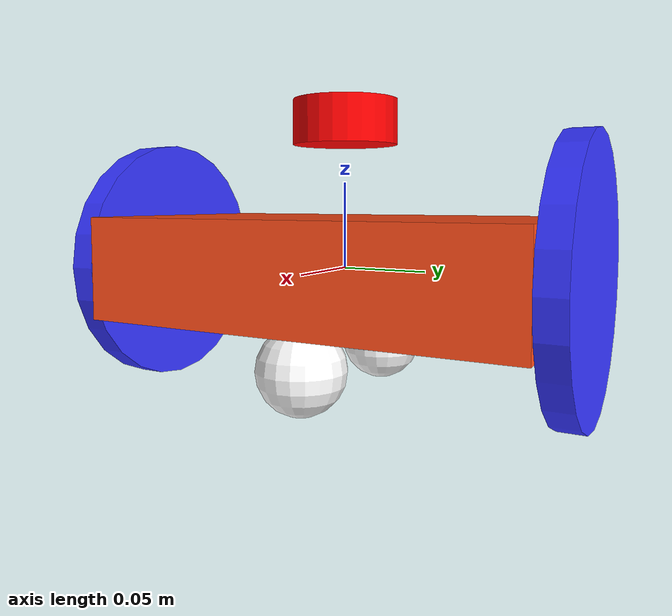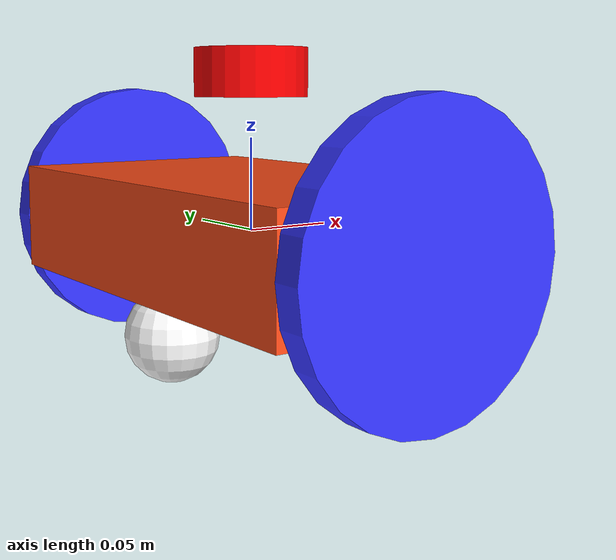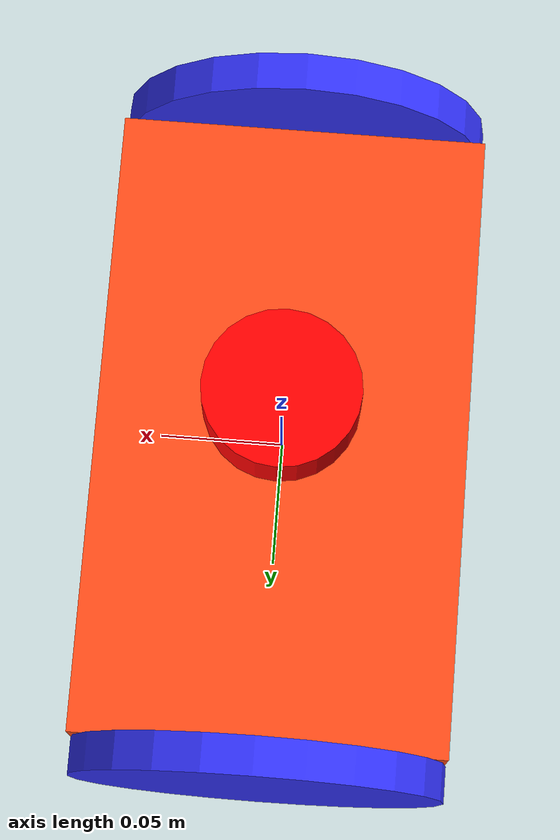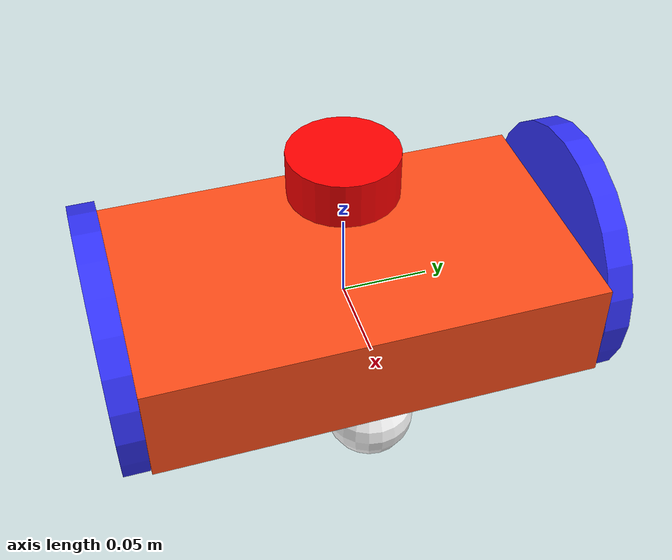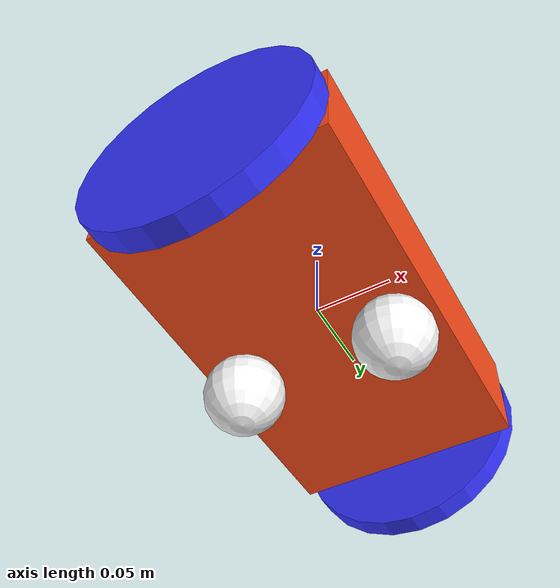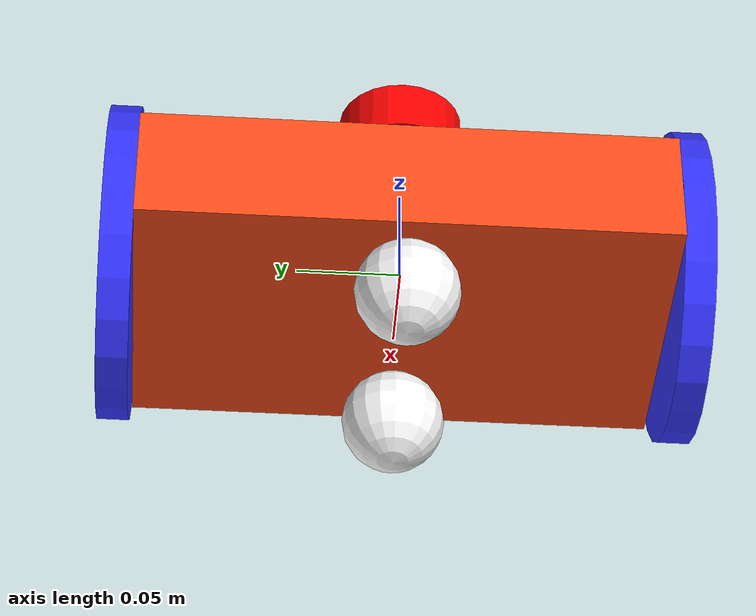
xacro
<?xml version="1.0"?>
<robot xmlns:xacro="http://www.ros.org/wiki/xacro"  name="robot">

    <xacro:include filename="robot_core.xacro"/>
    <xacro:include filename="ros2_control.xacro"/>
    <xacro:include filename="lidar.xacro"/>

</robot>

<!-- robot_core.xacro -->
<robot xmlns:xacro="http://www.ros.org/wiki/xacro" >

    <xacro:include filename="inertial_macros.xacro"/>

    <xacro:property name="chassis_length" value="0.15"/>
    <xacro:property name="chassis_width" value="0.255"/>
    <xacro:property name="chassis_height" value="0.06"/>
    <xacro:property name="chassis_mass" value="1.0"/>
    <xacro:property name="wheel_radius" value="0.075863"/>
    <xacro:property name="wheel_thickness" value="0.015"/>
    <xacro:property name="wheel_mass" value="0.08"/>
    <xacro:property name="wheel_offset_x" value="0.0"/>
    <xacro:property name="wheel_offset_y" value="0.135"/>
    <xacro:property name="wheel_offset_z" value="0.00"/>
    <xacro:property name="caster_wheel_radius" value="0.025"/>
    <xacro:property name="caster_wheel_mass" value="0.01"/>
    <xacro:property name="caster_wheel_offset_x" value="0.05"/>
    <xacro:property name="caster_wheel_offset_z" value="${wheel_offset_z - wheel_radius + caster_wheel_radius}"/>

    <material name="white">
        <color rgba="1 1 1 1" />
    </material>

    <material name="orange">
        <color rgba="1 0.3 0.1 1"/>
    </material>

    <material name="blue">
        <color rgba="0.2 0.2 1 1"/>
    </material>

    <material name="black">
        <color rgba="0 0 0 1"/>
    </material>

    <material name="red">
        <color rgba="1 0 0 1"/>
    </material>

    <!-- BASE LINK -->

    <link name="base_link">

    </link>

    <!-- BASE_FOOTPRINT LINK -->

    <joint name="base_footprint_joint" type="fixed">
        <parent link="base_link"/>
        <child link="base_footprint"/>
        <origin xyz="0 0 0" rpy="0 0 0"/>
    </joint>

    <link name="base_footprint">
    </link>

    <!-- CHASSIS LINK -->

    <joint name="chassis_joint" type="fixed">
        <parent link="base_link"/>
        <child link="chassis"/>
        <origin xyz="${-wheel_offset_x} 0 ${-wheel_offset_z}"/>
    </joint>

    <link name="chassis">
        <visual>
            <origin xyz="0 0 0"/>
            <geometry>
                <box size="${chassis_length} ${chassis_width} ${chassis_height}"/>
            </geometry>
            <material name="orange"/>
        </visual>
        <collision>
            <origin xyz="${chassis_length/2} 0 ${chassis_height/2}"/>
            <geometry>
                <box size="${chassis_length} ${chassis_width} ${chassis_height}"/>
            </geometry>
        </collision>
        <xacro:inertial_box mass="0.5" x="${chassis_length}" y="${chassis_width}" z="${chassis_height}">
            <origin xyz="${chassis_length/2} 0 ${chassis_height/2}" rpy="0 0 0"/>
        </xacro:inertial_box>
    </link>

    <gazebo reference="chassis">
        <material>Gazebo/Orange</material>
    </gazebo>

    <!-- LEFT WHEEL LINK -->

    <joint name="left_wheel_joint" type="continuous">
        <parent link="base_link"/>
        <child link="left_wheel"/>
        <origin xyz="0 ${wheel_offset_y} 0" rpy="-${pi/2} 0 0" />
        <axis xyz="0 0 1"/>
    </joint>

    <link name="left_wheel">
        <visual>
            <geometry>
                <cylinder radius="${wheel_radius}" length="${wheel_thickness}"/>
            </geometry>
            <material name="blue"/>
        </visual>
        <collision>
            <geometry>
                <sphere radius="${wheel_radius}"/>
            </geometry>
        </collision>
        <xacro:inertial_cylinder mass="${wheel_mass}" length="${wheel_thickness}" radius="${wheel_radius}">
            <origin xyz="0 0 0" rpy="0 0 0"/>
        </xacro:inertial_cylinder>
    </link>

    <gazebo reference="left_wheel">
        <material>Gazebo/Blue</material>
    </gazebo>

    <!-- RIGHT WHEEL LINK -->

    <joint name="right_wheel_joint" type="continuous">
        <parent link="base_link"/>
        <child link="right_wheel"/>
        <origin xyz="0 ${-wheel_offset_y} 0" rpy="${pi/2} 0 0" />
        <axis xyz="0 0 -1"/>
    </joint>

    <link name="right_wheel">
        <visual>
            <geometry>
                <cylinder radius="${wheel_radius}" length="${wheel_thickness}"/>
            </geometry>
            <material name="blue"/>
        </visual>
        <collision>
            <geometry>
                <sphere radius="${wheel_radius}"/>
            </geometry>
        </collision>
        <xacro:inertial_cylinder mass="${wheel_mass}" length="${wheel_thickness}" radius="${wheel_radius}">
            <origin xyz="0 0 0" rpy="0 0 0"/>
        </xacro:inertial_cylinder>
    </link>

    <gazebo reference="right_wheel">
        <material>Gazebo/Blue</material>
    </gazebo>

    <!-- CASTER WHEEL LINK -->

    <joint name="caster_wheel_joint" type="fixed">
        <parent link="chassis"/>
        <child link="caster_wheel"/>
        <origin xyz="${caster_wheel_offset_x} 0 ${caster_wheel_offset_z}"/>
    </joint>

    <link name="caster_wheel">
        <visual>
            <geometry>
                <sphere radius="${caster_wheel_radius}"/>
            </geometry>
            <material name="white"/>
        </visual>
        <collision>
            <geometry>
                <sphere radius="${caster_wheel_radius}"/>
            </geometry>
        </collision>
        <xacro:inertial_sphere mass="${caster_wheel_mass}" radius="${caster_wheel_radius}">
            <origin xyz="0 0 0" rpy="0 0 0"/>
        </xacro:inertial_sphere>
    </link>

    <gazebo reference="caster_wheel">
        <material>Gazebo/White</material>
        <mu1 value="0.001"/>
        <mu2 value="0.001"/>
    </gazebo>

    <!-- CASTER WHEEL LINK -->

    <joint name="caster_wheel_joint_2" type="fixed">
        <parent link="chassis"/>
        <child link="caster_wheel_2"/>
        <origin xyz="${-caster_wheel_offset_x} 0 ${caster_wheel_offset_z}"/>
    </joint>

    <link name="caster_wheel_2">
        <visual>
            <geometry>
                <sphere radius="${caster_wheel_radius}"/>
            </geometry>
            <material name="white"/>
        </visual>
        <collision>
            <geometry>
                <sphere radius="${caster_wheel_radius}"/>
            </geometry>
        </collision>
        <xacro:inertial_sphere mass="${caster_wheel_mass}" radius="${caster_wheel_radius}">
            <origin xyz="0 0 0" rpy="0 0 0"/>
        </xacro:inertial_sphere>
    </link>

    <gazebo reference="caster_wheel_2">
        <material>Gazebo/White</material>
        <mu1 value="0.001"/>
        <mu2 value="0.001"/>
    </gazebo>

</robot>

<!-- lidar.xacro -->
<robot xmlns:xacro="http://www.ros.org/wiki/xacro">

    <joint name="laser_joint" type="fixed">
        <parent link="chassis"/>
        <child link="laser_frame"/>
        <origin xyz = "0.00 0 0.085" rpy="0 0 0"/>
    </joint>

    <link name="laser_frame">
        <visual>
            <geometry>
                <cylinder radius="0.0305" length="0.026"/>
            </geometry>
            <material name="red"/>
        </visual>
        <collision>
            <geometry>
                <cylinder radius="0.0305" length="0.026"/>
            </geometry>
        </collision>
        <xacro:inertial_cylinder mass="0.1" length="0.026" radius="0.0305">
            <origin xyz="0 0 0" rpy="0 0 0"/>
        </xacro:inertial_cylinder>
    </link>

    <gazebo reference="laser_frame">
        <material>Gazebo/Red</material>
        <sensor name="laser" type="ray">
            <pose>0 0 0 0 0 0</pose>
            <visualize>true</visualize>
            <update_rate>10</update_rate>
            <ray>
                <scan>
                    <horizontal>
                        <samples>360</samples>
                        <min_angle>-3.14</min_angle>
                        <max_angle>3.14</max_angle>
                    </horizontal>
                </scan>
                <range>
                    <min>0.3</min>
                    <max>12</max>
                </range>
            </ray>
            <plugin name="laser_controller" filename="libgazebo_ros_ray_sensor.so">
                <ros>
                    <argument>~/out:=scan</argument>
                </ros>
                <output_type>sensor_msgs/LaserScan</output_type>
                <frame_name>laser_frame</frame_name>
            </plugin>
        </sensor>
    </gazebo>

</robot>
